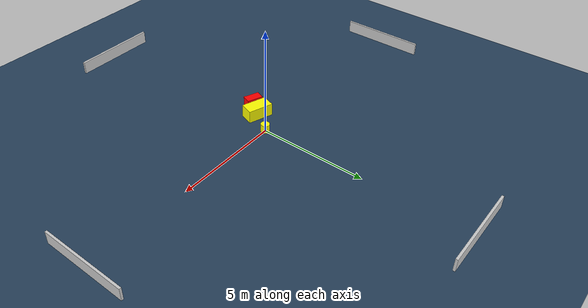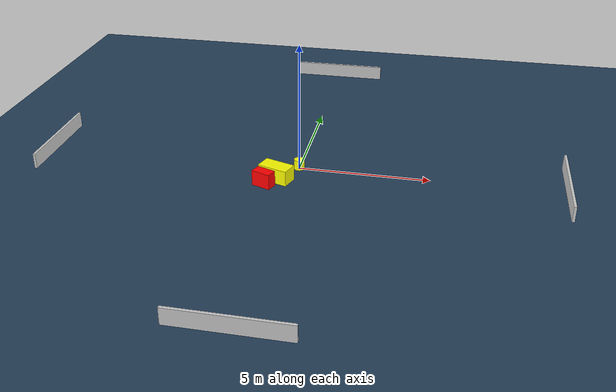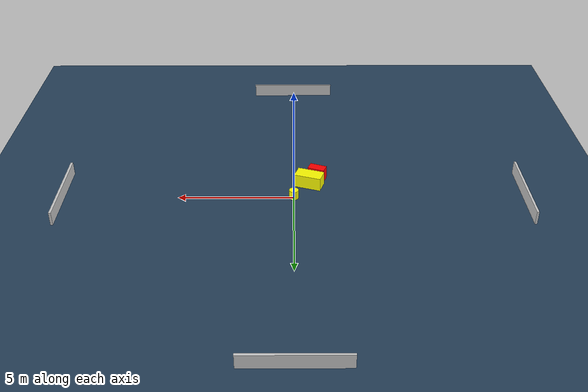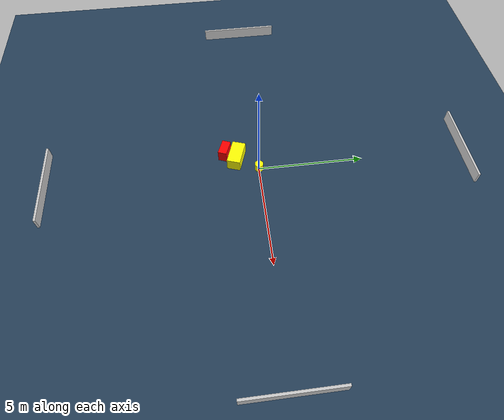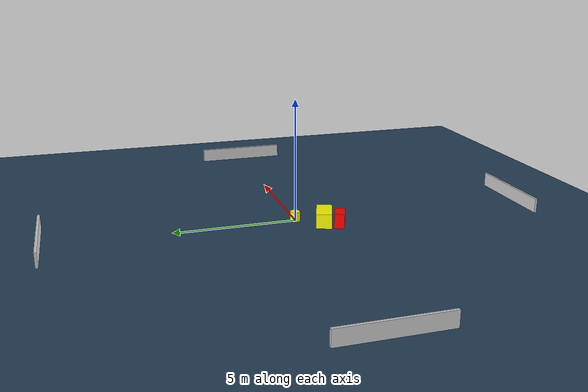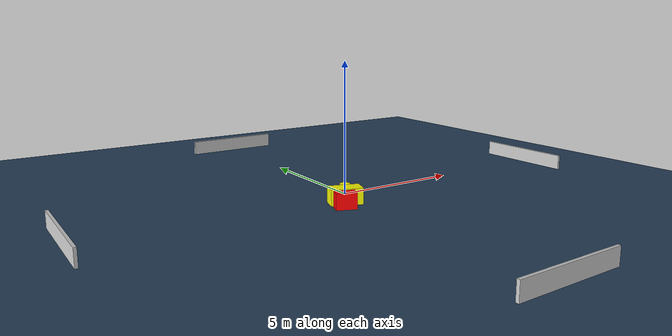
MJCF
<?xml version="1.0" ?>
<mujoco model="generated_environment">
  <option timestep="0.01" integrator="RK4" cone="elliptic"/>
  <default>
    <geom density="1"/>
  </default>
  <asset>
    <texture builtin="gradient" height="3072" name="skybox" rgb1="0.3 0.5 0.7" rgb2="0 0 0" type="skybox" width="512"/>
    <texture builtin="checker" height="300" name="groundplane" rgb1="0.2 0.3 0.4" rgb2="0.1 0.2 0.3" type="2d" width="300"/>
    <material name="groundplane" reflectance="0.2" texrepeat="5 5" texture="groundplane"/>
  </asset>
  <worldbody>
    <light dir="0 0 -1" directional="true" pos="0 0 1.5"/>
    <geom condim="3" friction="0.5 0.005 0.001" material="groundplane" name="floor" pos="0 0 0" size="0 0 0.05" type="plane"/>
    <body name="walls">
      <geom name="wall_1" condim="4" pos="-10.0 0.0 0.3" rgba="0.800000011920929 0.800000011920929 0.800000011920929 1.0" size="0.05 2.0 0.3" type="box"/>
      <geom name="wall_2" condim="4" pos="10.0 0.0 0.3" rgba="0.800000011920929 0.800000011920929 0.800000011920929 1.0" size="0.05 2.0 0.3" type="box"/>
      <geom name="wall_3" condim="4" pos="0.0 -10.0 0.3" rgba="0.800000011920929 0.800000011920929 0.800000011920929 1.0" size="2.0 0.05 0.3" type="box"/>
      <geom name="wall_4" condim="4" pos="0.0 10.0 0.3" rgba="0.800000011920929 0.800000011920929 0.800000011920929 1.0" size="2.0 0.05 0.3" type="box"/>
    </body>
    <body name="robot">
      <joint name="joint_x" type="slide" pos="0 0 0" axis="1 0 0"/>
      <joint name="joint_y" type="slide" pos="0 0 0" axis="0 1 0"/>
      <geom name="robot" type="cylinder" pos="0.0 0.0 0.2" size="0.2 0.2 0.0" mass="5.0" friction="1.0 0.005 0.0001" condim="4" rgba="1.0 1.0 0.0 1.0"/>
    </body>
    <body name="obstacle_1_movable">
      <geom name="obstacle_1_movable" condim="4" pos="-0.6854544069001822 -1.0176209976818962 0.3" euler="0 0 251.21585429470665" friction="0.0 0.005 0.001" rgba="1.0 1.0 0.0 1.0" size="0.31646187601697323 0.5962321399244537 0.3" type="box" mass="0.1"/>
      <joint type="free"/>
    </body>
    <body name="obstacle_2_static">
      <geom name="obstacle_2_static" condim="4" pos="-1.0458059710524312 -1.5592167870598608 0.3" euler="0 0 248.63180943885902" friction="0.0 0.005 0.001" rgba="1.0 0.0 0.0 1.0" size="0.20586686198065318 0.37713799065085385 0.3" type="box"/>
    </body>
  </worldbody>
  <actuator>
    <motor name="actuator_x" joint="joint_x" gear="1" ctrlrange="-1 1"/>
    <motor name="actuator_y" joint="joint_y" gear="1" ctrlrange="-1 1"/>
  </actuator>
</mujoco>
